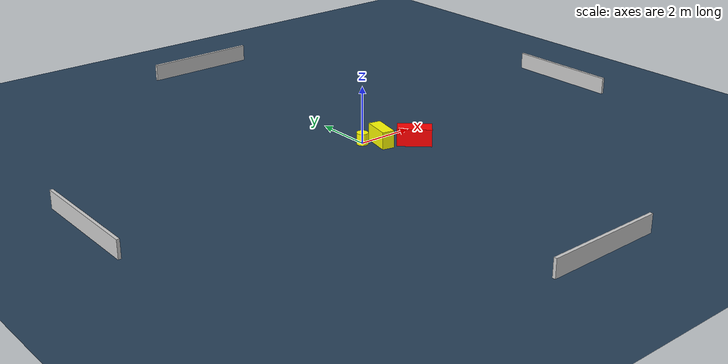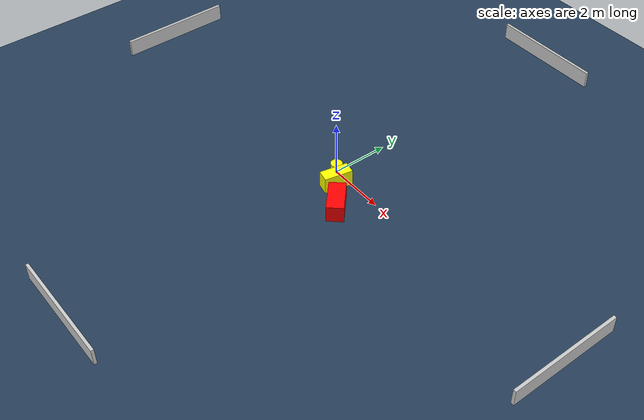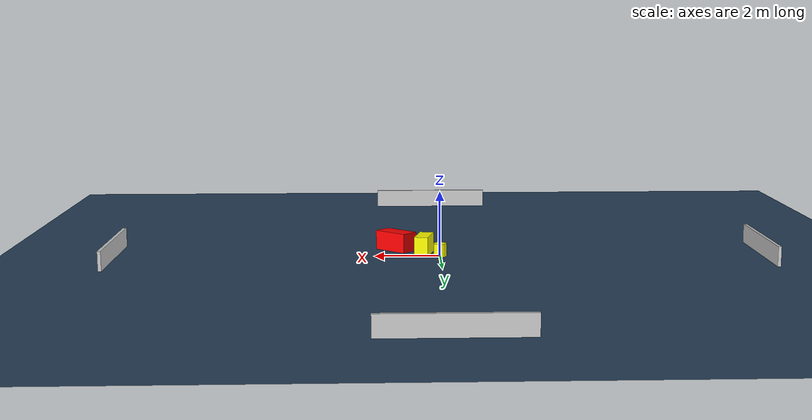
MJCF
<?xml version="1.0" ?>
<mujoco model="generated_environment">
  <option timestep="0.01" integrator="RK4" cone="elliptic"/>
  <default>
    <geom density="1"/>
  </default>
  <asset>
    <texture builtin="gradient" height="3072" name="skybox" rgb1="0.3 0.5 0.7" rgb2="0 0 0" type="skybox" width="512"/>
    <texture builtin="checker" height="300" name="groundplane" rgb1="0.2 0.3 0.4" rgb2="0.1 0.2 0.3" type="2d" width="300"/>
    <material name="groundplane" reflectance="0.2" texrepeat="5 5" texture="groundplane"/>
  </asset>
  <worldbody>
    <light dir="0 0 -1" directional="true" pos="0 0 1.5"/>
    <geom condim="3" friction="0.5 0.005 0.001" material="groundplane" name="floor" pos="0 0 0" size="0 0 0.05" type="plane"/>
    <body name="walls">
      <geom name="wall_1" condim="4" pos="-10.0 0.0 0.3" rgba="0.800000011920929 0.800000011920929 0.800000011920929 1.0" size="0.05 2.0 0.3" type="box"/>
      <geom name="wall_2" condim="4" pos="10.0 0.0 0.3" rgba="0.800000011920929 0.800000011920929 0.800000011920929 1.0" size="0.05 2.0 0.3" type="box"/>
      <geom name="wall_3" condim="4" pos="0.0 -10.0 0.3" rgba="0.800000011920929 0.800000011920929 0.800000011920929 1.0" size="2.0 0.05 0.3" type="box"/>
      <geom name="wall_4" condim="4" pos="0.0 10.0 0.3" rgba="0.800000011920929 0.800000011920929 0.800000011920929 1.0" size="2.0 0.05 0.3" type="box"/>
    </body>
    <body name="robot">
      <joint name="joint_x" type="slide" pos="0 0 0" axis="1 0 0"/>
      <joint name="joint_y" type="slide" pos="0 0 0" axis="0 1 0"/>
      <geom name="robot" type="cylinder" pos="0.0 0.0 0.2" size="0.2 0.2 0.0" mass="5.0" friction="1.0 0.005 0.0001" condim="4" rgba="1.0 1.0 0.0 1.0"/>
    </body>
    <body name="obstacle_1_movable">
      <geom name="obstacle_1_movable" condim="4" pos="0.48127208428869617 -0.3987748912096747 0.3" euler="0 0 257.6563239107953" friction="0.0 0.005 0.001" rgba="1.0 1.0 0.0 1.0" size="0.4885686193939439 0.21187057222723657 0.3" type="box" mass="0.1"/>
      <joint type="free"/>
    </body>
    <body name="obstacle_2_static">
      <geom name="obstacle_2_static" condim="4" pos="1.3445538259698786 -1.077037661247522 0.3" euler="0 0 47.299011791254244" friction="0.0 0.005 0.001" rgba="1.0 0.0 0.0 1.0" size="0.28778090159566017 0.5820697979892779 0.3" type="box"/>
    </body>
  </worldbody>
  <actuator>
    <motor name="actuator_x" joint="joint_x" gear="1" ctrlrange="-1 1"/>
    <motor name="actuator_y" joint="joint_y" gear="1" ctrlrange="-1 1"/>
  </actuator>
</mujoco>
